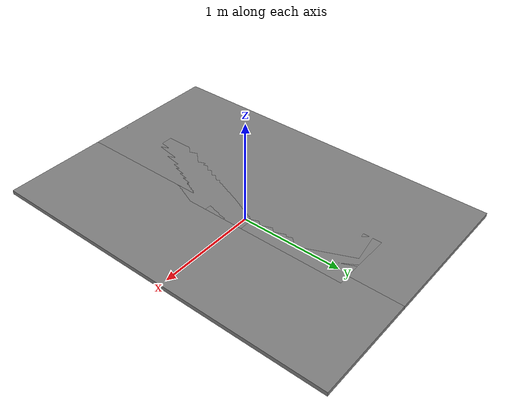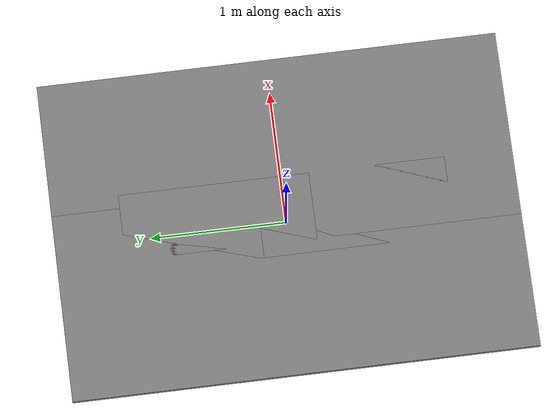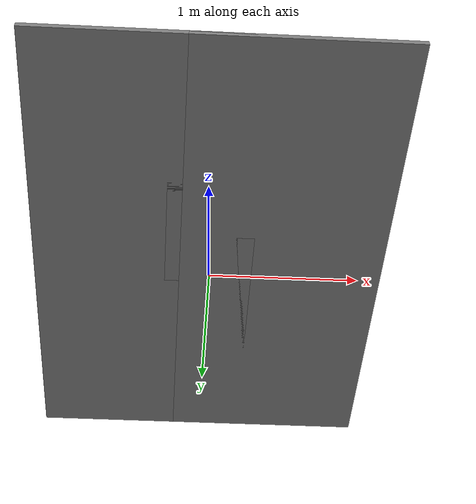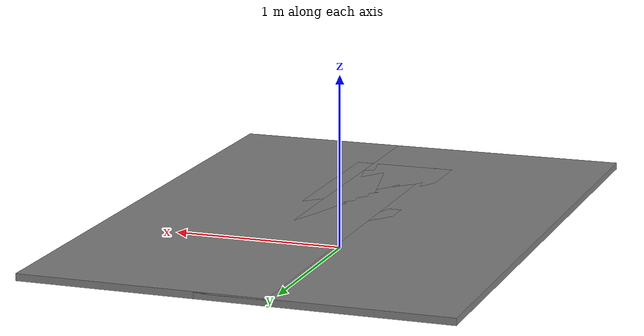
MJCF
<mujoco model="combined_tables">
  <worldbody>
    <body name="combined_tables_body" pos="0 0 0.18">
      <joint name="combined_tables_joint"/>
      <geom name="table1_geom" size="0.7 1.7 0.02" type="box" rgba="0.5 0.5 0.5 1" pos="0.5 0 0"/>
      <geom name="table2_geom" size="0.7 1.7 0.02" type="box" rgba="0.5 0.5 0.5 1" pos="-0.5 0 0"/>
      <geom name="table3_geom" size="0.3 0.7 0.02" type="box" rgba="0.5 0.5 0.5 1" pos="0 -0.5 0"/>
      <geom name="table4_geom" size="0.3 0.7 0.02" type="box" rgba="0.5 0.5 0.5 1" pos="0 0.5 0"/>
    </body>
  </worldbody>
</mujoco>
